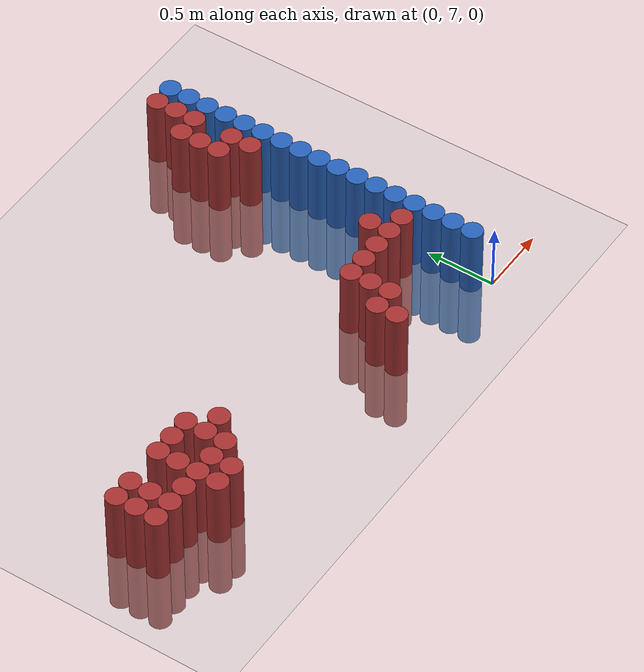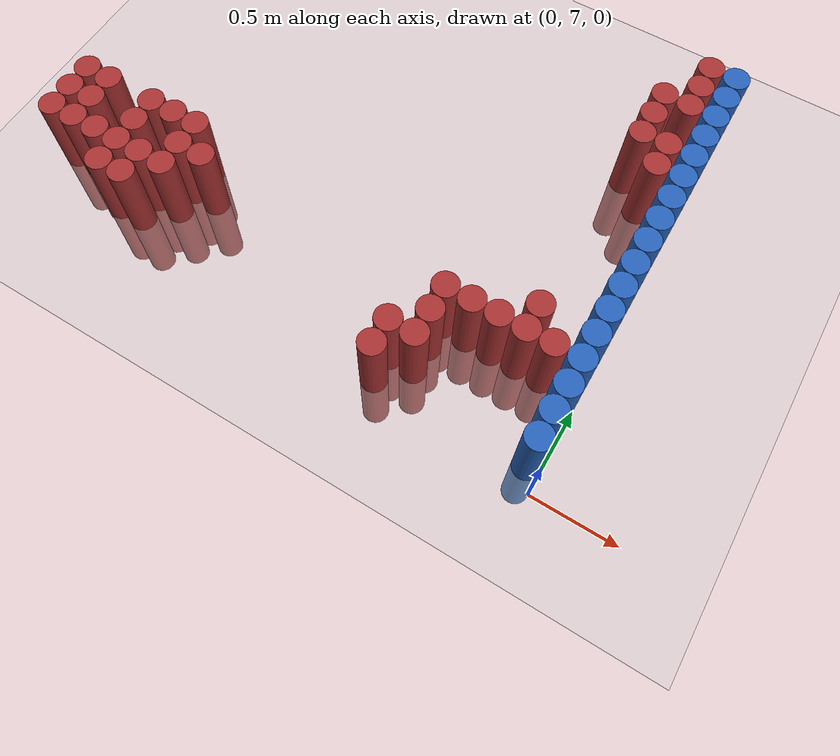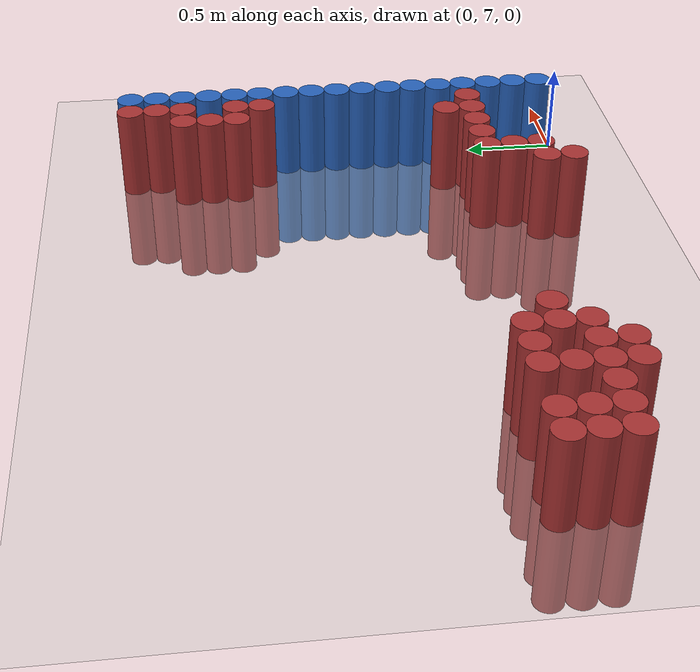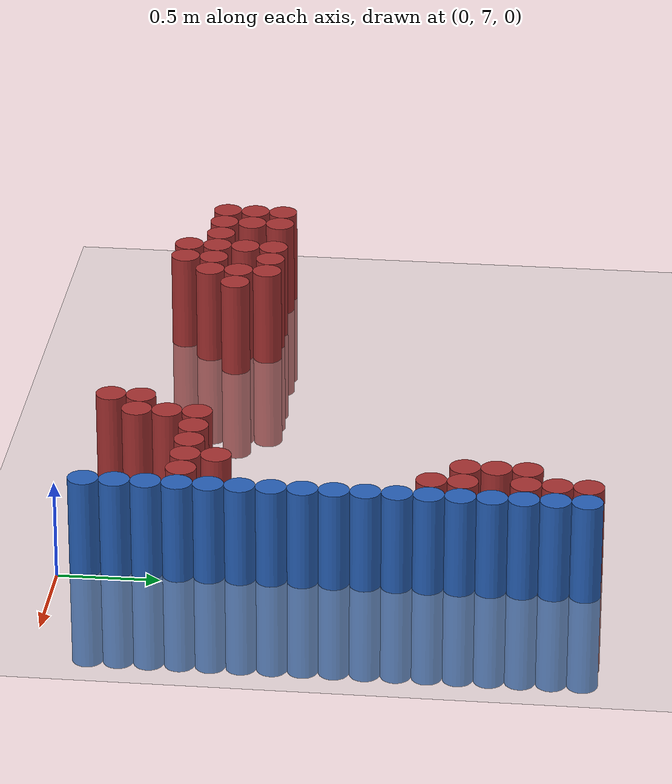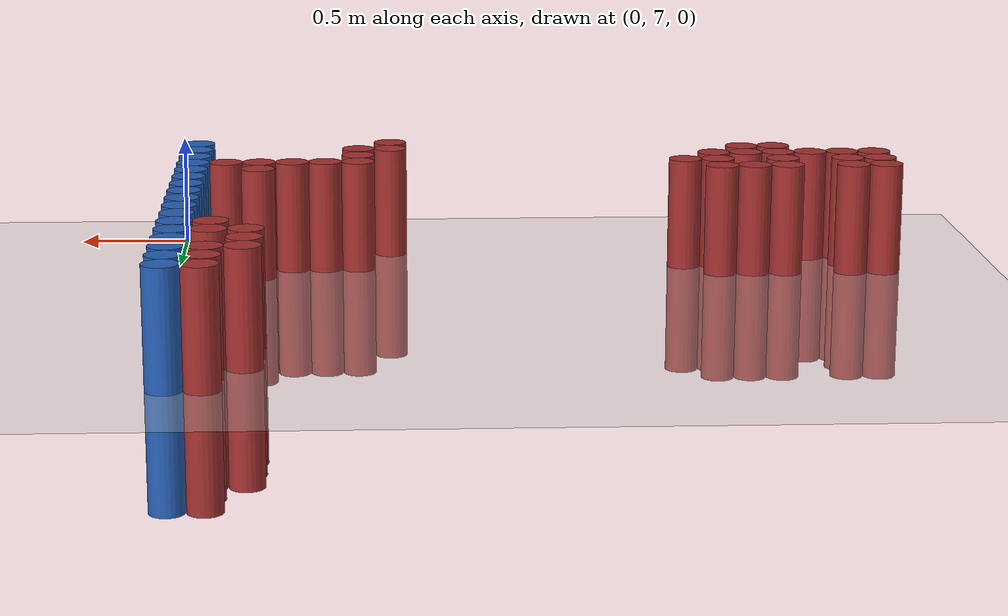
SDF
<sdf version="1.6">
 <world name="default">
  <model name="ground_plane">
   <static>1</static>
   <link name="link">
    <collision name="collision">
     <geometry><plane><normal>0 0 1</normal><size>100 100</size></plane></geometry>
     <surface><friction><ode><mu>100</mu><mu2>50</mu2></ode></friction></surface>
    </collision>
    <visual name="visual">
     <cast_shadows>0</cast_shadows>
     <geometry><plane><normal>0 0 1</normal><size>100 100</size></plane></geometry>
     <material>
      <script><uri>file://media/materials/scripts/gazebo.material</uri><name>Gazebo/Grey</name></script>
     </material>
    </visual>
   </link>
  </model>
  <model name="unit_cylinder_174">
   <static>1</static>
   <pose>-3.225000 7.425000 0.000000 0.000000 0.000000 0.000000</pose>
   <link name="link">
    <inertial>
     <mass>1</mass>
     <inertia><ixx>0.145833</ixx><ixy>0</ixy><ixz>0</ixz><iyy>0.145833</iyy><iyz>0</iyz><izz>0.125</izz></inertia>
    </inertial>
    <collision name="collision">
     <geometry><cylinder><radius>0.075000</radius><length>1</length></cylinder></geometry>
    </collision>
    <visual name="visual">
     <geometry><cylinder><radius>0.075000</radius><length>1</length></cylinder></geometry>
     <material>
      <ambient>0.648000 0.192000 0.192000 1</ambient>
      <diffuse>0.648000 0.192000 0.192000 1</diffuse>
     </material>
     <material>
      <script><name>Gazebo/Grey</name><uri>file://media/materials/scripts/gazebo.material</uri></script>
     </material>
    </visual>
   </link>
  </model>
  <model name="unit_cylinder_175">
   <static>1</static>
   <pose>-3.225000 7.575000 0.000000 0.000000 0.000000 0.000000</pose>
   <link name="link">
    <inertial>
     <mass>1</mass>
     <inertia><ixx>0.145833</ixx><ixy>0</ixy><ixz>0</ixz><iyy>0.145833</iyy><iyz>0</iyz><izz>0.125</izz></inertia>
    </inertial>
    <collision name="collision">
     <geometry><cylinder><radius>0.075000</radius><length>1</length></cylinder></geometry>
    </collision>
    <visual name="visual">
     <geometry><cylinder><radius>0.075000</radius><length>1</length></cylinder></geometry>
     <material>
      <ambient>0.648000 0.192000 0.192000 1</ambient>
      <diffuse>0.648000 0.192000 0.192000 1</diffuse>
     </material>
     <material>
      <script><name>Gazebo/Grey</name><uri>file://media/materials/scripts/gazebo.material</uri></script>
     </material>
    </visual>
   </link>
  </model>
  <model name="unit_cylinder_176">
   <static>1</static>
   <pose>-3.225000 7.725000 0.000000 0.000000 0.000000 0.000000</pose>
   <link name="link">
    <inertial>
     <mass>1</mass>
     <inertia><ixx>0.145833</ixx><ixy>0</ixy><ixz>0</ixz><iyy>0.145833</iyy><iyz>0</iyz><izz>0.125</izz></inertia>
    </inertial>
    <collision name="collision">
     <geometry><cylinder><radius>0.075000</radius><length>1</length></cylinder></geometry>
    </collision>
    <visual name="visual">
     <geometry><cylinder><radius>0.075000</radius><length>1</length></cylinder></geometry>
     <material>
      <ambient>0.648000 0.192000 0.192000 1</ambient>
      <diffuse>0.648000 0.192000 0.192000 1</diffuse>
     </material>
     <material>
      <script><name>Gazebo/Grey</name><uri>file://media/materials/scripts/gazebo.material</uri></script>
     </material>
    </visual>
   </link>
  </model>
  <model name="unit_cylinder_186">
   <static>1</static>
   <pose>-3.075000 7.425000 0.000000 0.000000 0.000000 0.000000</pose>
   <link name="link">
    <inertial>
     <mass>1</mass>
     <inertia><ixx>0.145833</ixx><ixy>0</ixy><ixz>0</ixz><iyy>0.145833</iyy><iyz>0</iyz><izz>0.125</izz></inertia>
    </inertial>
    <collision name="collision">
     <geometry><cylinder><radius>0.075000</radius><length>1</length></cylinder></geometry>
    </collision>
    <visual name="visual">
     <geometry><cylinder><radius>0.075000</radius><length>1</length></cylinder></geometry>
     <material>
      <ambient>0.648000 0.192000 0.192000 1</ambient>
      <diffuse>0.648000 0.192000 0.192000 1</diffuse>
     </material>
     <material>
      <script><name>Gazebo/Grey</name><uri>file://media/materials/scripts/gazebo.material</uri></script>
     </material>
    </visual>
   </link>
  </model>
  <model name="unit_cylinder_187">
   <static>1</static>
   <pose>-3.075000 7.575000 0.000000 0.000000 0.000000 0.000000</pose>
   <link name="link">
    <inertial>
     <mass>1</mass>
     <inertia><ixx>0.145833</ixx><ixy>0</ixy><ixz>0</ixz><iyy>0.145833</iyy><iyz>0</iyz><izz>0.125</izz></inertia>
    </inertial>
    <collision name="collision">
     <geometry><cylinder><radius>0.075000</radius><length>1</length></cylinder></geometry>
    </collision>
    <visual name="visual">
     <geometry><cylinder><radius>0.075000</radius><length>1</length></cylinder></geometry>
     <material>
      <ambient>0.648000 0.192000 0.192000 1</ambient>
      <diffuse>0.648000 0.192000 0.192000 1</diffuse>
     </material>
     <material>
      <script><name>Gazebo/Grey</name><uri>file://media/materials/scripts/gazebo.material</uri></script>
     </material>
    </visual>
   </link>
  </model>
  <model name="unit_cylinder_188">
   <static>1</static>
   <pose>-3.075000 7.725000 0.000000 0.000000 0.000000 0.000000</pose>
   <link name="link">
    <inertial>
     <mass>1</mass>
     <inertia><ixx>0.145833</ixx><ixy>0</ixy><ixz>0</ixz><iyy>0.145833</iyy><iyz>0</iyz><izz>0.125</izz></inertia>
    </inertial>
    <collision name="collision">
     <geometry><cylinder><radius>0.075000</radius><length>1</length></cylinder></geometry>
    </collision>
    <visual name="visual">
     <geometry><cylinder><radius>0.075000</radius><length>1</length></cylinder></geometry>
     <material>
      <ambient>0.648000 0.192000 0.192000 1</ambient>
      <diffuse>0.648000 0.192000 0.192000 1</diffuse>
     </material>
     <material>
      <script><name>Gazebo/Grey</name><uri>file://media/materials/scripts/gazebo.material</uri></script>
     </material>
    </visual>
   </link>
  </model>
  <model name="unit_cylinder_196">
   <static>1</static>
   <pose>-2.925000 7.425000 0.000000 0.000000 0.000000 0.000000</pose>
   <link name="link">
    <inertial>
     <mass>1</mass>
     <inertia><ixx>0.145833</ixx><ixy>0</ixy><ixz>0</ixz><iyy>0.145833</iyy><iyz>0</iyz><izz>0.125</izz></inertia>
    </inertial>
    <collision name="collision">
     <geometry><cylinder><radius>0.075000</radius><length>1</length></cylinder></geometry>
    </collision>
    <visual name="visual">
     <geometry><cylinder><radius>0.075000</radius><length>1</length></cylinder></geometry>
     <material>
      <ambient>0.648000 0.192000 0.192000 1</ambient>
      <diffuse>0.648000 0.192000 0.192000 1</diffuse>
     </material>
     <material>
      <script><name>Gazebo/Grey</name><uri>file://media/materials/scripts/gazebo.material</uri></script>
     </material>
    </visual>
   </link>
  </model>
  <model name="unit_cylinder_206">
   <static>1</static>
   <pose>-2.775000 7.275000 0.000000 0.000000 0.000000 0.000000</pose>
   <link name="link">
    <inertial>
     <mass>1</mass>
     <inertia><ixx>0.145833</ixx><ixy>0</ixy><ixz>0</ixz><iyy>0.145833</iyy><iyz>0</iyz><izz>0.125</izz></inertia>
    </inertial>
    <collision name="collision">
     <geometry><cylinder><radius>0.075000</radius><length>1</length></cylinder></geometry>
    </collision>
    <visual name="visual">
     <geometry><cylinder><radius>0.075000</radius><length>1</length></cylinder></geometry>
     <material>
      <ambient>0.648000 0.192000 0.192000 1</ambient>
      <diffuse>0.648000 0.192000 0.192000 1</diffuse>
     </material>
     <material>
      <script><name>Gazebo/Grey</name><uri>file://media/materials/scripts/gazebo.material</uri></script>
     </material>
    </visual>
   </link>
  </model>
  <model name="unit_cylinder_207">
   <static>1</static>
   <pose>-2.775000 7.425000 0.000000 0.000000 0.000000 0.000000</pose>
   <link name="link">
    <inertial>
     <mass>1</mass>
     <inertia><ixx>0.145833</ixx><ixy>0</ixy><ixz>0</ixz><iyy>0.145833</iyy><iyz>0</iyz><izz>0.125</izz></inertia>
    </inertial>
    <collision name="collision">
     <geometry><cylinder><radius>0.075000</radius><length>1</length></cylinder></geometry>
    </collision>
    <visual name="visual">
     <geometry><cylinder><radius>0.075000</radius><length>1</length></cylinder></geometry>
     <material>
      <ambient>0.648000 0.192000 0.192000 1</ambient>
      <diffuse>0.648000 0.192000 0.192000 1</diffuse>
     </material>
     <material>
      <script><name>Gazebo/Grey</name><uri>file://media/materials/scripts/gazebo.material</uri></script>
     </material>
    </visual>
   </link>
  </model>
  <model name="unit_cylinder_208">
   <static>1</static>
   <pose>-2.775000 7.575000 0.000000 0.000000 0.000000 0.000000</pose>
   <link name="link">
    <inertial>
     <mass>1</mass>
     <inertia><ixx>0.145833</ixx><ixy>0</ixy><ixz>0</ixz><iyy>0.145833</iyy><iyz>0</iyz><izz>0.125</izz></inertia>
    </inertial>
    <collision name="collision">
     <geometry><cylinder><radius>0.075000</radius><length>1</length></cylinder></geometry>
    </collision>
    <visual name="visual">
     <geometry><cylinder><radius>0.075000</radius><length>1</length></cylinder></geometry>
     <material>
      <ambient>0.648000 0.192000 0.192000 1</ambient>
      <diffuse>0.648000 0.192000 0.192000 1</diffuse>
     </material>
     <material>
      <script><name>Gazebo/Grey</name><uri>file://media/materials/scripts/gazebo.material</uri></script>
     </material>
    </visual>
   </link>
  </model>
  <model name="unit_cylinder_209">
   <static>1</static>
   <pose>-2.775000 7.725000 0.000000 0.000000 0.000000 0.000000</pose>
   <link name="link">
    <inertial>
     <mass>1</mass>
     <inertia><ixx>0.145833</ixx><ixy>0</ixy><ixz>0</ixz><iyy>0.145833</iyy><iyz>0</iyz><izz>0.125</izz></inertia>
    </inertial>
    <collision name="collision">
     <geometry><cylinder><radius>0.075000</radius><length>1</length></cylinder></geometry>
    </collision>
    <visual name="visual">
     <geometry><cylinder><radius>0.075000</radius><length>1</length></cylinder></geometry>
     <material>
      <ambient>0.648000 0.192000 0.192000 1</ambient>
      <diffuse>0.648000 0.192000 0.192000 1</diffuse>
     </material>
     <material>
      <script><name>Gazebo/Grey</name><uri>file://media/materials/scripts/gazebo.material</uri></script>
     </material>
    </visual>
   </link>
  </model>
  <model name="unit_cylinder_213">
   <static>1</static>
   <pose>-2.625000 7.275000 0.000000 0.000000 0.000000 0.000000</pose>
   <link name="link">
    <inertial>
     <mass>1</mass>
     <inertia><ixx>0.145833</ixx><ixy>0</ixy><ixz>0</ixz><iyy>0.145833</iyy><iyz>0</iyz><izz>0.125</izz></inertia>
    </inertial>
    <collision name="collision">
     <geometry><cylinder><radius>0.075000</radius><length>1</length></cylinder></geometry>
    </collision>
    <visual name="visual">
     <geometry><cylinder><radius>0.075000</radius><length>1</length></cylinder></geometry>
     <material>
      <ambient>0.648000 0.192000 0.192000 1</ambient>
      <diffuse>0.648000 0.192000 0.192000 1</diffuse>
     </material>
     <material>
      <script><name>Gazebo/Grey</name><uri>file://media/materials/scripts/gazebo.material</uri></script>
     </material>
    </visual>
   </link>
  </model>
  <model name="unit_cylinder_214">
   <static>1</static>
   <pose>-2.625000 7.425000 0.000000 0.000000 0.000000 0.000000</pose>
   <link name="link">
    <inertial>
     <mass>1</mass>
     <inertia><ixx>0.145833</ixx><ixy>0</ixy><ixz>0</ixz><iyy>0.145833</iyy><iyz>0</iyz><izz>0.125</izz></inertia>
    </inertial>
    <collision name="collision">
     <geometry><cylinder><radius>0.075000</radius><length>1</length></cylinder></geometry>
    </collision>
    <visual name="visual">
     <geometry><cylinder><radius>0.075000</radius><length>1</length></cylinder></geometry>
     <material>
      <ambient>0.648000 0.192000 0.192000 1</ambient>
      <diffuse>0.648000 0.192000 0.192000 1</diffuse>
     </material>
     <material>
      <script><name>Gazebo/Grey</name><uri>file://media/materials/scripts/gazebo.material</uri></script>
     </material>
    </visual>
   </link>
  </model>
  <model name="unit_cylinder_215">
   <static>1</static>
   <pose>-2.625000 7.725000 0.000000 0.000000 0.000000 0.000000</pose>
   <link name="link">
    <inertial>
     <mass>1</mass>
     <inertia><ixx>0.145833</ixx><ixy>0</ixy><ixz>0</ixz><iyy>0.145833</iyy><iyz>0</iyz><izz>0.125</izz></inertia>
    </inertial>
    <collision name="collision">
     <geometry><cylinder><radius>0.075000</radius><length>1</length></cylinder></geometry>
    </collision>
    <visual name="visual">
     <geometry><cylinder><radius>0.075000</radius><length>1</length></cylinder></geometry>
     <material>
      <ambient>0.648000 0.192000 0.192000 1</ambient>
      <diffuse>0.648000 0.192000 0.192000 1</diffuse>
     </material>
     <material>
      <script><name>Gazebo/Grey</name><uri>file://media/materials/scripts/gazebo.material</uri></script>
     </material>
    </visual>
   </link>
  </model>
  <model name="unit_cylinder_223">
   <static>1</static>
   <pose>-2.475000 7.425000 0.000000 0.000000 0.000000 0.000000</pose>
   <link name="link">
    <inertial>
     <mass>1</mass>
     <inertia><ixx>0.145833</ixx><ixy>0</ixy><ixz>0</ixz><iyy>0.145833</iyy><iyz>0</iyz><izz>0.125</izz></inertia>
    </inertial>
    <collision name="collision">
     <geometry><cylinder><radius>0.075000</radius><length>1</length></cylinder></geometry>
    </collision>
    <visual name="visual">
     <geometry><cylinder><radius>0.075000</radius><length>1</length></cylinder></geometry>
     <material>
      <ambient>0.648000 0.192000 0.192000 1</ambient>
      <diffuse>0.648000 0.192000 0.192000 1</diffuse>
     </material>
     <material>
      <script><name>Gazebo/Grey</name><uri>file://media/materials/scripts/gazebo.material</uri></script>
     </material>
    </visual>
   </link>
  </model>
  <model name="unit_cylinder_224">
   <static>1</static>
   <pose>-2.475000 7.575000 0.000000 0.000000 0.000000 0.000000</pose>
   <link name="link">
    <inertial>
     <mass>1</mass>
     <inertia><ixx>0.145833</ixx><ixy>0</ixy><ixz>0</ixz><iyy>0.145833</iyy><iyz>0</iyz><izz>0.125</izz></inertia>
    </inertial>
    <collision name="collision">
     <geometry><cylinder><radius>0.075000</radius><length>1</length></cylinder></geometry>
    </collision>
    <visual name="visual">
     <geometry><cylinder><radius>0.075000</radius><length>1</length></cylinder></geometry>
     <material>
      <ambient>0.648000 0.192000 0.192000 1</ambient>
      <diffuse>0.648000 0.192000 0.192000 1</diffuse>
     </material>
     <material>
      <script><name>Gazebo/Grey</name><uri>file://media/materials/scripts/gazebo.material</uri></script>
     </material>
    </visual>
   </link>
  </model>
  <model name="unit_cylinder_225">
   <static>1</static>
   <pose>-2.475000 7.725000 0.000000 0.000000 0.000000 0.000000</pose>
   <link name="link">
    <inertial>
     <mass>1</mass>
     <inertia><ixx>0.145833</ixx><ixy>0</ixy><ixz>0</ixz><iyy>0.145833</iyy><iyz>0</iyz><izz>0.125</izz></inertia>
    </inertial>
    <collision name="collision">
     <geometry><cylinder><radius>0.075000</radius><length>1</length></cylinder></geometry>
    </collision>
    <visual name="visual">
     <geometry><cylinder><radius>0.075000</radius><length>1</length></cylinder></geometry>
     <material>
      <ambient>0.648000 0.192000 0.192000 1</ambient>
      <diffuse>0.648000 0.192000 0.192000 1</diffuse>
     </material>
     <material>
      <script><name>Gazebo/Grey</name><uri>file://media/materials/scripts/gazebo.material</uri></script>
     </material>
    </visual>
   </link>
  </model>
  <model name="unit_cylinder_229">
   <static>1</static>
   <pose>-2.325000 7.575000 0.000000 0.000000 0.000000 0.000000</pose>
   <link name="link">
    <inertial>
     <mass>1</mass>
     <inertia><ixx>0.145833</ixx><ixy>0</ixy><ixz>0</ixz><iyy>0.145833</iyy><iyz>0</iyz><izz>0.125</izz></inertia>
    </inertial>
    <collision name="collision">
     <geometry><cylinder><radius>0.075000</radius><length>1</length></cylinder></geometry>
    </collision>
    <visual name="visual">
     <geometry><cylinder><radius>0.075000</radius><length>1</length></cylinder></geometry>
     <material>
      <ambient>0.648000 0.192000 0.192000 1</ambient>
      <diffuse>0.648000 0.192000 0.192000 1</diffuse>
     </material>
     <material>
      <script><name>Gazebo/Grey</name><uri>file://media/materials/scripts/gazebo.material</uri></script>
     </material>
    </visual>
   </link>
  </model>
  <model name="unit_cylinder_259">
   <static>1</static>
   <pose>-0.975000 7.125000 0.000000 0.000000 0.000000 0.000000</pose>
   <link name="link">
    <inertial>
     <mass>1</mass>
     <inertia><ixx>0.145833</ixx><ixy>0</ixy><ixz>0</ixz><iyy>0.145833</iyy><iyz>0</iyz><izz>0.125</izz></inertia>
    </inertial>
    <collision name="collision">
     <geometry><cylinder><radius>0.075000</radius><length>1</length></cylinder></geometry>
    </collision>
    <visual name="visual">
     <geometry><cylinder><radius>0.075000</radius><length>1</length></cylinder></geometry>
     <material>
      <ambient>0.648000 0.192000 0.192000 1</ambient>
      <diffuse>0.648000 0.192000 0.192000 1</diffuse>
     </material>
     <material>
      <script><name>Gazebo/Grey</name><uri>file://media/materials/scripts/gazebo.material</uri></script>
     </material>
    </visual>
   </link>
  </model>
  <model name="unit_cylinder_260">
   <static>1</static>
   <pose>-0.975000 7.275000 0.000000 0.000000 0.000000 0.000000</pose>
   <link name="link">
    <inertial>
     <mass>1</mass>
     <inertia><ixx>0.145833</ixx><ixy>0</ixy><ixz>0</ixz><iyy>0.145833</iyy><iyz>0</iyz><izz>0.125</izz></inertia>
    </inertial>
    <collision name="collision">
     <geometry><cylinder><radius>0.075000</radius><length>1</length></cylinder></geometry>
    </collision>
    <visual name="visual">
     <geometry><cylinder><radius>0.075000</radius><length>1</length></cylinder></geometry>
     <material>
      <ambient>0.648000 0.192000 0.192000 1</ambient>
      <diffuse>0.648000 0.192000 0.192000 1</diffuse>
     </material>
     <material>
      <script><name>Gazebo/Grey</name><uri>file://media/materials/scripts/gazebo.material</uri></script>
     </material>
    </visual>
   </link>
  </model>
  <model name="unit_cylinder_265">
   <static>1</static>
   <pose>-0.825000 7.275000 0.000000 0.000000 0.000000 0.000000</pose>
   <link name="link">
    <inertial>
     <mass>1</mass>
     <inertia><ixx>0.145833</ixx><ixy>0</ixy><ixz>0</ixz><iyy>0.145833</iyy><iyz>0</iyz><izz>0.125</izz></inertia>
    </inertial>
    <collision name="collision">
     <geometry><cylinder><radius>0.075000</radius><length>1</length></cylinder></geometry>
    </collision>
    <visual name="visual">
     <geometry><cylinder><radius>0.075000</radius><length>1</length></cylinder></geometry>
     <material>
      <ambient>0.648000 0.192000 0.192000 1</ambient>
      <diffuse>0.648000 0.192000 0.192000 1</diffuse>
     </material>
     <material>
      <script><name>Gazebo/Grey</name><uri>file://media/materials/scripts/gazebo.material</uri></script>
     </material>
    </visual>
   </link>
  </model>
  <model name="unit_cylinder_266">
   <static>1</static>
   <pose>-0.825000 7.425000 0.000000 0.000000 0.000000 0.000000</pose>
   <link name="link">
    <inertial>
     <mass>1</mass>
     <inertia><ixx>0.145833</ixx><ixy>0</ixy><ixz>0</ixz><iyy>0.145833</iyy><iyz>0</iyz><izz>0.125</izz></inertia>
    </inertial>
    <collision name="collision">
     <geometry><cylinder><radius>0.075000</radius><length>1</length></cylinder></geometry>
    </collision>
    <visual name="visual">
     <geometry><cylinder><radius>0.075000</radius><length>1</length></cylinder></geometry>
     <material>
      <ambient>0.648000 0.192000 0.192000 1</ambient>
      <diffuse>0.648000 0.192000 0.192000 1</diffuse>
     </material>
     <material>
      <script><name>Gazebo/Grey</name><uri>file://media/materials/scripts/gazebo.material</uri></script>
     </material>
    </visual>
   </link>
  </model>
  <model name="unit_cylinder_267">
   <static>1</static>
   <pose>-0.825000 7.575000 0.000000 0.000000 0.000000 0.000000</pose>
   <link name="link">
    <inertial>
     <mass>1</mass>
     <inertia><ixx>0.145833</ixx><ixy>0</ixy><ixz>0</ixz><iyy>0.145833</iyy><iyz>0</iyz><izz>0.125</izz></inertia>
    </inertial>
    <collision name="collision">
     <geometry><cylinder><radius>0.075000</radius><length>1</length></cylinder></geometry>
    </collision>
    <visual name="visual">
     <geometry><cylinder><radius>0.075000</radius><length>1</length></cylinder></geometry>
     <material>
      <ambient>0.648000 0.192000 0.192000 1</ambient>
      <diffuse>0.648000 0.192000 0.192000 1</diffuse>
     </material>
     <material>
      <script><name>Gazebo/Grey</name><uri>file://media/materials/scripts/gazebo.material</uri></script>
     </material>
    </visual>
   </link>
  </model>
  <model name="unit_cylinder_269">
   <static>1</static>
   <pose>-0.675000 7.575000 0.000000 0.000000 0.000000 0.000000</pose>
   <link name="link">
    <inertial>
     <mass>1</mass>
     <inertia><ixx>0.145833</ixx><ixy>0</ixy><ixz>0</ixz><iyy>0.145833</iyy><iyz>0</iyz><izz>0.125</izz></inertia>
    </inertial>
    <collision name="collision">
     <geometry><cylinder><radius>0.075000</radius><length>1</length></cylinder></geometry>
    </collision>
    <visual name="visual">
     <geometry><cylinder><radius>0.075000</radius><length>1</length></cylinder></geometry>
     <material>
      <ambient>0.648000 0.192000 0.192000 1</ambient>
      <diffuse>0.648000 0.192000 0.192000 1</diffuse>
     </material>
     <material>
      <script><name>Gazebo/Grey</name><uri>file://media/materials/scripts/gazebo.material</uri></script>
     </material>
    </visual>
   </link>
  </model>
  <model name="unit_cylinder_271">
   <static>1</static>
   <pose>-0.525000 7.575000 0.000000 0.000000 0.000000 0.000000</pose>
   <link name="link">
    <inertial>
     <mass>1</mass>
     <inertia><ixx>0.145833</ixx><ixy>0</ixy><ixz>0</ixz><iyy>0.145833</iyy><iyz>0</iyz><izz>0.125</izz></inertia>
    </inertial>
    <collision name="collision">
     <geometry><cylinder><radius>0.075000</radius><length>1</length></cylinder></geometry>
    </collision>
    <visual name="visual">
     <geometry><cylinder><radius>0.075000</radius><length>1</length></cylinder></geometry>
     <material>
      <ambient>0.648000 0.192000 0.192000 1</ambient>
      <diffuse>0.648000 0.192000 0.192000 1</diffuse>
     </material>
     <material>
      <script><name>Gazebo/Grey</name><uri>file://media/materials/scripts/gazebo.material</uri></script>
     </material>
    </visual>
   </link>
  </model>
  <model name="unit_cylinder_273">
   <static>1</static>
   <pose>-0.375000 7.575000 0.000000 0.000000 0.000000 0.000000</pose>
   <link name="link">
    <inertial>
     <mass>1</mass>
     <inertia><ixx>0.145833</ixx><ixy>0</ixy><ixz>0</ixz><iyy>0.145833</iyy><iyz>0</iyz><izz>0.125</izz></inertia>
    </inertial>
    <collision name="collision">
     <geometry><cylinder><radius>0.075000</radius><length>1</length></cylinder></geometry>
    </collision>
    <visual name="visual">
     <geometry><cylinder><radius>0.075000</radius><length>1</length></cylinder></geometry>
     <material>
      <ambient>0.648000 0.192000 0.192000 1</ambient>
      <diffuse>0.648000 0.192000 0.192000 1</diffuse>
     </material>
     <material>
      <script><name>Gazebo/Grey</name><uri>file://media/materials/scripts/gazebo.material</uri></script>
     </material>
    </visual>
   </link>
  </model>
  <model name="unit_cylinder_274">
   <static>1</static>
   <pose>-0.375000 7.725000 0.000000 0.000000 0.000000 0.000000</pose>
   <link name="link">
    <inertial>
     <mass>1</mass>
     <inertia><ixx>0.145833</ixx><ixy>0</ixy><ixz>0</ixz><iyy>0.145833</iyy><iyz>0</iyz><izz>0.125</izz></inertia>
    </inertial>
    <collision name="collision">
     <geometry><cylinder><radius>0.075000</radius><length>1</length></cylinder></geometry>
    </collision>
    <visual name="visual">
     <geometry><cylinder><radius>0.075000</radius><length>1</length></cylinder></geometry>
     <material>
      <ambient>0.648000 0.192000 0.192000 1</ambient>
      <diffuse>0.648000 0.192000 0.192000 1</diffuse>
     </material>
     <material>
      <script><name>Gazebo/Grey</name><uri>file://media/materials/scripts/gazebo.material</uri></script>
     </material>
    </visual>
   </link>
  </model>
  <model name="unit_cylinder_275">
   <static>1</static>
   <pose>-0.375000 8.925000 0.000000 0.000000 0.000000 0.000000</pose>
   <link name="link">
    <inertial>
     <mass>1</mass>
     <inertia><ixx>0.145833</ixx><ixy>0</ixy><ixz>0</ixz><iyy>0.145833</iyy><iyz>0</iyz><izz>0.125</izz></inertia>
    </inertial>
    <collision name="collision">
     <geometry><cylinder><radius>0.075000</radius><length>1</length></cylinder></geometry>
    </collision>
    <visual name="visual">
     <geometry><cylinder><radius>0.075000</radius><length>1</length></cylinder></geometry>
     <material>
      <ambient>0.648000 0.192000 0.192000 1</ambient>
      <diffuse>0.648000 0.192000 0.192000 1</diffuse>
     </material>
     <material>
      <script><name>Gazebo/Grey</name><uri>file://media/materials/scripts/gazebo.material</uri></script>
     </material>
    </visual>
   </link>
  </model>
  <model name="unit_cylinder_276">
   <static>1</static>
   <pose>-0.375000 9.075000 0.000000 0.000000 0.000000 0.000000</pose>
   <link name="link">
    <inertial>
     <mass>1</mass>
     <inertia><ixx>0.145833</ixx><ixy>0</ixy><ixz>0</ixz><iyy>0.145833</iyy><iyz>0</iyz><izz>0.125</izz></inertia>
    </inertial>
    <collision name="collision">
     <geometry><cylinder><radius>0.075000</radius><length>1</length></cylinder></geometry>
    </collision>
    <visual name="visual">
     <geometry><cylinder><radius>0.075000</radius><length>1</length></cylinder></geometry>
     <material>
      <ambient>0.648000 0.192000 0.192000 1</ambient>
      <diffuse>0.648000 0.192000 0.192000 1</diffuse>
     </material>
     <material>
      <script><name>Gazebo/Grey</name><uri>file://media/materials/scripts/gazebo.material</uri></script>
     </material>
    </visual>
   </link>
  </model>
  <model name="unit_cylinder_277">
   <static>1</static>
   <pose>-0.375000 9.225000 0.000000 0.000000 0.000000 0.000000</pose>
   <link name="link">
    <inertial>
     <mass>1</mass>
     <inertia><ixx>0.145833</ixx><ixy>0</ixy><ixz>0</ixz><iyy>0.145833</iyy><iyz>0</iyz><izz>0.125</izz></inertia>
    </inertial>
    <collision name="collision">
     <geometry><cylinder><radius>0.075000</radius><length>1</length></cylinder></geometry>
    </collision>
    <visual name="visual">
     <geometry><cylinder><radius>0.075000</radius><length>1</length></cylinder></geometry>
     <material>
      <ambient>0.648000 0.192000 0.192000 1</ambient>
      <diffuse>0.648000 0.192000 0.192000 1</diffuse>
     </material>
     <material>
      <script><name>Gazebo/Grey</name><uri>file://media/materials/scripts/gazebo.material</uri></script>
     </material>
    </visual>
   </link>
  </model>
  <model name="unit_cylinder_279">
   <static>1</static>
   <pose>-0.225000 7.575000 0.000000 0.000000 0.000000 0.000000</pose>
   <link name="link">
    <inertial>
     <mass>1</mass>
     <inertia><ixx>0.145833</ixx><ixy>0</ixy><ixz>0</ixz><iyy>0.145833</iyy><iyz>0</iyz><izz>0.125</izz></inertia>
    </inertial>
    <collision name="collision">
     <geometry><cylinder><radius>0.075000</radius><length>1</length></cylinder></geometry>
    </collision>
    <visual name="visual">
     <geometry><cylinder><radius>0.075000</radius><length>1</length></cylinder></geometry>
     <material>
      <ambient>0.648000 0.192000 0.192000 1</ambient>
      <diffuse>0.648000 0.192000 0.192000 1</diffuse>
     </material>
     <material>
      <script><name>Gazebo/Grey</name><uri>file://media/materials/scripts/gazebo.material</uri></script>
     </material>
    </visual>
   </link>
  </model>
  <model name="unit_cylinder_280">
   <static>1</static>
   <pose>-0.225000 8.775000 0.000000 0.000000 0.000000 0.000000</pose>
   <link name="link">
    <inertial>
     <mass>1</mass>
     <inertia><ixx>0.145833</ixx><ixy>0</ixy><ixz>0</ixz><iyy>0.145833</iyy><iyz>0</iyz><izz>0.125</izz></inertia>
    </inertial>
    <collision name="collision">
     <geometry><cylinder><radius>0.075000</radius><length>1</length></cylinder></geometry>
    </collision>
    <visual name="visual">
     <geometry><cylinder><radius>0.075000</radius><length>1</length></cylinder></geometry>
     <material>
      <ambient>0.648000 0.192000 0.192000 1</ambient>
      <diffuse>0.648000 0.192000 0.192000 1</diffuse>
     </material>
     <material>
      <script><name>Gazebo/Grey</name><uri>file://media/materials/scripts/gazebo.material</uri></script>
     </material>
    </visual>
   </link>
  </model>
  <model name="unit_cylinder_281">
   <static>1</static>
   <pose>-0.225000 8.925000 0.000000 0.000000 0.000000 0.000000</pose>
   <link name="link">
    <inertial>
     <mass>1</mass>
     <inertia><ixx>0.145833</ixx><ixy>0</ixy><ixz>0</ixz><iyy>0.145833</iyy><iyz>0</iyz><izz>0.125</izz></inertia>
    </inertial>
    <collision name="collision">
     <geometry><cylinder><radius>0.075000</radius><length>1</length></cylinder></geometry>
    </collision>
    <visual name="visual">
     <geometry><cylinder><radius>0.075000</radius><length>1</length></cylinder></geometry>
     <material>
      <ambient>0.648000 0.192000 0.192000 1</ambient>
      <diffuse>0.648000 0.192000 0.192000 1</diffuse>
     </material>
     <material>
      <script><name>Gazebo/Grey</name><uri>file://media/materials/scripts/gazebo.material</uri></script>
     </material>
    </visual>
   </link>
  </model>
  <model name="unit_cylinder_282">
   <static>1</static>
   <pose>-0.225000 9.225000 0.000000 0.000000 0.000000 0.000000</pose>
   <link name="link">
    <inertial>
     <mass>1</mass>
     <inertia><ixx>0.145833</ixx><ixy>0</ixy><ixz>0</ixz><iyy>0.145833</iyy><iyz>0</iyz><izz>0.125</izz></inertia>
    </inertial>
    <collision name="collision">
     <geometry><cylinder><radius>0.075000</radius><length>1</length></cylinder></geometry>
    </collision>
    <visual name="visual">
     <geometry><cylinder><radius>0.075000</radius><length>1</length></cylinder></geometry>
     <material>
      <ambient>0.648000 0.192000 0.192000 1</ambient>
      <diffuse>0.648000 0.192000 0.192000 1</diffuse>
     </material>
     <material>
      <script><name>Gazebo/Grey</name><uri>file://media/materials/scripts/gazebo.material</uri></script>
     </material>
    </visual>
   </link>
  </model>
  <model name="unit_cylinder_283">
   <static>1</static>
   <pose>-0.225000 9.375000 0.000000 0.000000 0.000000 0.000000</pose>
   <link name="link">
    <inertial>
     <mass>1</mass>
     <inertia><ixx>0.145833</ixx><ixy>0</ixy><ixz>0</ixz><iyy>0.145833</iyy><iyz>0</iyz><izz>0.125</izz></inertia>
    </inertial>
    <collision name="collision">
     <geometry><cylinder><radius>0.075000</radius><length>1</length></cylinder></geometry>
    </collision>
    <visual name="visual">
     <geometry><cylinder><radius>0.075000</radius><length>1</length></cylinder></geometry>
     <material>
      <ambient>0.648000 0.192000 0.192000 1</ambient>
      <diffuse>0.648000 0.192000 0.192000 1</diffuse>
     </material>
     <material>
      <script><name>Gazebo/Grey</name><uri>file://media/materials/scripts/gazebo.material</uri></script>
     </material>
    </visual>
   </link>
  </model>
  <model name="unit_cylinder_284">
   <static>1</static>
   <pose>-0.225000 9.525000 0.000000 0.000000 0.000000 0.000000</pose>
   <link name="link">
    <inertial>
     <mass>1</mass>
     <inertia><ixx>0.145833</ixx><ixy>0</ixy><ixz>0</ixz><iyy>0.145833</iyy><iyz>0</iyz><izz>0.125</izz></inertia>
    </inertial>
    <collision name="collision">
     <geometry><cylinder><radius>0.075000</radius><length>1</length></cylinder></geometry>
    </collision>
    <visual name="visual">
     <geometry><cylinder><radius>0.075000</radius><length>1</length></cylinder></geometry>
     <material>
      <ambient>0.648000 0.192000 0.192000 1</ambient>
      <diffuse>0.648000 0.192000 0.192000 1</diffuse>
     </material>
     <material>
      <script><name>Gazebo/Grey</name><uri>file://media/materials/scripts/gazebo.material</uri></script>
     </material>
    </visual>
   </link>
  </model>
  <model name="unit_cylinder_298">
   <static>1</static>
   <pose>-0.075000 7.125000 0.000000 0.000000 0.000000 0.000000</pose>
   <link name="link">
    <inertial>
     <mass>1</mass>
     <inertia><ixx>0.145833</ixx><ixy>0</ixy><ixz>0</ixz><iyy>0.145833</iyy><iyz>0</iyz><izz>0.125</izz></inertia>
    </inertial>
    <collision name="collision">
     <geometry><cylinder><radius>0.075000</radius><length>1</length></cylinder></geometry>
    </collision>
    <visual name="visual">
     <geometry><cylinder><radius>0.075000</radius><length>1</length></cylinder></geometry>
     <material>
      <ambient>0.152000 0.379000 0.720000 1</ambient>
      <diffuse>0.152000 0.379000 0.720000 1</diffuse>
     </material>
     <material>
      <script><name>Gazebo/Grey</name><uri>file://media/materials/scripts/gazebo.material</uri></script>
     </material>
    </visual>
   </link>
  </model>
  <model name="unit_cylinder_299">
   <static>1</static>
   <pose>-0.075000 7.275000 0.000000 0.000000 0.000000 0.000000</pose>
   <link name="link">
    <inertial>
     <mass>1</mass>
     <inertia><ixx>0.145833</ixx><ixy>0</ixy><ixz>0</ixz><iyy>0.145833</iyy><iyz>0</iyz><izz>0.125</izz></inertia>
    </inertial>
    <collision name="collision">
     <geometry><cylinder><radius>0.075000</radius><length>1</length></cylinder></geometry>
    </collision>
    <visual name="visual">
     <geometry><cylinder><radius>0.075000</radius><length>1</length></cylinder></geometry>
     <material>
      <ambient>0.152000 0.379000 0.720000 1</ambient>
      <diffuse>0.152000 0.379000 0.720000 1</diffuse>
     </material>
     <material>
      <script><name>Gazebo/Grey</name><uri>file://media/materials/scripts/gazebo.material</uri></script>
     </material>
    </visual>
   </link>
  </model>
  <model name="unit_cylinder_300">
   <static>1</static>
   <pose>-0.075000 7.425000 0.000000 0.000000 0.000000 0.000000</pose>
   <link name="link">
    <inertial>
     <mass>1</mass>
     <inertia><ixx>0.145833</ixx><ixy>0</ixy><ixz>0</ixz><iyy>0.145833</iyy><iyz>0</iyz><izz>0.125</izz></inertia>
    </inertial>
    <collision name="collision">
     <geometry><cylinder><radius>0.075000</radius><length>1</length></cylinder></geometry>
    </collision>
    <visual name="visual">
     <geometry><cylinder><radius>0.075000</radius><length>1</length></cylinder></geometry>
     <material>
      <ambient>0.152000 0.379000 0.720000 1</ambient>
      <diffuse>0.152000 0.379000 0.720000 1</diffuse>
     </material>
     <material>
      <script><name>Gazebo/Grey</name><uri>file://media/materials/scripts/gazebo.material</uri></script>
     </material>
    </visual>
   </link>
  </model>
  <model name="unit_cylinder_301">
   <static>1</static>
   <pose>-0.075000 7.575000 0.000000 0.000000 0.000000 0.000000</pose>
   <link name="link">
    <inertial>
     <mass>1</mass>
     <inertia><ixx>0.145833</ixx><ixy>0</ixy><ixz>0</ixz><iyy>0.145833</iyy><iyz>0</iyz><izz>0.125</izz></inertia>
    </inertial>
    <collision name="collision">
     <geometry><cylinder><radius>0.075000</radius><length>1</length></cylinder></geometry>
    </collision>
    <visual name="visual">
     <geometry><cylinder><radius>0.075000</radius><length>1</length></cylinder></geometry>
     <material>
      <ambient>0.152000 0.379000 0.720000 1</ambient>
      <diffuse>0.152000 0.379000 0.720000 1</diffuse>
     </material>
     <material>
      <script><name>Gazebo/Grey</name><uri>file://media/materials/scripts/gazebo.material</uri></script>
     </material>
    </visual>
   </link>
  </model>
  <model name="unit_cylinder_302">
   <static>1</static>
   <pose>-0.075000 7.725000 0.000000 0.000000 0.000000 0.000000</pose>
   <link name="link">
    <inertial>
     <mass>1</mass>
     <inertia><ixx>0.145833</ixx><ixy>0</ixy><ixz>0</ixz><iyy>0.145833</iyy><iyz>0</iyz><izz>0.125</izz></inertia>
    </inertial>
    <collision name="collision">
     <geometry><cylinder><radius>0.075000</radius><length>1</length></cylinder></geometry>
    </collision>
    <visual name="visual">
     <geometry><cylinder><radius>0.075000</radius><length>1</length></cylinder></geometry>
     <material>
      <ambient>0.152000 0.379000 0.720000 1</ambient>
      <diffuse>0.152000 0.379000 0.720000 1</diffuse>
     </material>
     <material>
      <script><name>Gazebo/Grey</name><uri>file://media/materials/scripts/gazebo.material</uri></script>
     </material>
    </visual>
   </link>
  </model>
  <model name="unit_cylinder_303">
   <static>1</static>
   <pose>-0.075000 7.875000 0.000000 0.000000 0.000000 0.000000</pose>
   <link name="link">
    <inertial>
     <mass>1</mass>
     <inertia><ixx>0.145833</ixx><ixy>0</ixy><ixz>0</ixz><iyy>0.145833</iyy><iyz>0</iyz><izz>0.125</izz></inertia>
    </inertial>
    <collision name="collision">
     <geometry><cylinder><radius>0.075000</radius><length>1</length></cylinder></geometry>
    </collision>
    <visual name="visual">
     <geometry><cylinder><radius>0.075000</radius><length>1</length></cylinder></geometry>
     <material>
      <ambient>0.152000 0.379000 0.720000 1</ambient>
      <diffuse>0.152000 0.379000 0.720000 1</diffuse>
     </material>
     <material>
      <script><name>Gazebo/Grey</name><uri>file://media/materials/scripts/gazebo.material</uri></script>
     </material>
    </visual>
   </link>
  </model>
  <model name="unit_cylinder_304">
   <static>1</static>
   <pose>-0.075000 8.025000 0.000000 0.000000 0.000000 0.000000</pose>
   <link name="link">
    <inertial>
     <mass>1</mass>
     <inertia><ixx>0.145833</ixx><ixy>0</ixy><ixz>0</ixz><iyy>0.145833</iyy><iyz>0</iyz><izz>0.125</izz></inertia>
    </inertial>
    <collision name="collision">
     <geometry><cylinder><radius>0.075000</radius><length>1</length></cylinder></geometry>
    </collision>
    <visual name="visual">
     <geometry><cylinder><radius>0.075000</radius><length>1</length></cylinder></geometry>
     <material>
      <ambient>0.152000 0.379000 0.720000 1</ambient>
      <diffuse>0.152000 0.379000 0.720000 1</diffuse>
     </material>
     <material>
      <script><name>Gazebo/Grey</name><uri>file://media/materials/scripts/gazebo.material</uri></script>
     </material>
    </visual>
   </link>
  </model>
  <model name="unit_cylinder_305">
   <static>1</static>
   <pose>-0.075000 8.175000 0.000000 0.000000 0.000000 0.000000</pose>
   <link name="link">
    <inertial>
     <mass>1</mass>
     <inertia><ixx>0.145833</ixx><ixy>0</ixy><ixz>0</ixz><iyy>0.145833</iyy><iyz>0</iyz><izz>0.125</izz></inertia>
    </inertial>
    <collision name="collision">
     <geometry><cylinder><radius>0.075000</radius><length>1</length></cylinder></geometry>
    </collision>
    <visual name="visual">
     <geometry><cylinder><radius>0.075000</radius><length>1</length></cylinder></geometry>
     <material>
      <ambient>0.152000 0.379000 0.720000 1</ambient>
      <diffuse>0.152000 0.379000 0.720000 1</diffuse>
     </material>
     <material>
      <script><name>Gazebo/Grey</name><uri>file://media/materials/scripts/gazebo.material</uri></script>
     </material>
    </visual>
   </link>
  </model>
  <model name="unit_cylinder_306">
   <static>1</static>
   <pose>-0.075000 8.325000 0.000000 0.000000 0.000000 0.000000</pose>
   <link name="link">
    <inertial>
     <mass>1</mass>
     <inertia><ixx>0.145833</ixx><ixy>0</ixy><ixz>0</ixz><iyy>0.145833</iyy><iyz>0</iyz><izz>0.125</izz></inertia>
    </inertial>
    <collision name="collision">
     <geometry><cylinder><radius>0.075000</radius><length>1</length></cylinder></geometry>
    </collision>
    <visual name="visual">
     <geometry><cylinder><radius>0.075000</radius><length>1</length></cylinder></geometry>
     <material>
      <ambient>0.152000 0.379000 0.720000 1</ambient>
      <diffuse>0.152000 0.379000 0.720000 1</diffuse>
     </material>
     <material>
      <script><name>Gazebo/Grey</name><uri>file://media/materials/scripts/gazebo.material</uri></script>
     </material>
    </visual>
   </link>
  </model>
  <model name="unit_cylinder_307">
   <static>1</static>
   <pose>-0.075000 8.475000 0.000000 0.000000 0.000000 0.000000</pose>
   <link name="link">
    <inertial>
     <mass>1</mass>
     <inertia><ixx>0.145833</ixx><ixy>0</ixy><ixz>0</ixz><iyy>0.145833</iyy><iyz>0</iyz><izz>0.125</izz></inertia>
    </inertial>
    <collision name="collision">
     <geometry><cylinder><radius>0.075000</radius><length>1</length></cylinder></geometry>
    </collision>
    <visual name="visual">
     <geometry><cylinder><radius>0.075000</radius><length>1</length></cylinder></geometry>
     <material>
      <ambient>0.152000 0.379000 0.720000 1</ambient>
      <diffuse>0.152000 0.379000 0.720000 1</diffuse>
     </material>
     <material>
      <script><name>Gazebo/Grey</name><uri>file://media/materials/scripts/gazebo.material</uri></script>
     </material>
    </visual>
   </link>
  </model>
  <model name="unit_cylinder_308">
   <static>1</static>
   <pose>-0.075000 8.625000 0.000000 0.000000 0.000000 0.000000</pose>
   <link name="link">
    <inertial>
     <mass>1</mass>
     <inertia><ixx>0.145833</ixx><ixy>0</ixy><ixz>0</ixz><iyy>0.145833</iyy><iyz>0</iyz><izz>0.125</izz></inertia>
    </inertial>
    <collision name="collision">
     <geometry><cylinder><radius>0.075000</radius><length>1</length></cylinder></geometry>
    </collision>
    <visual name="visual">
     <geometry><cylinder><radius>0.075000</radius><length>1</length></cylinder></geometry>
     <material>
      <ambient>0.152000 0.379000 0.720000 1</ambient>
      <diffuse>0.152000 0.379000 0.720000 1</diffuse>
     </material>
     <material>
      <script><name>Gazebo/Grey</name><uri>file://media/materials/scripts/gazebo.material</uri></script>
     </material>
    </visual>
   </link>
  </model>
  <model name="unit_cylinder_309">
   <static>1</static>
   <pose>-0.075000 8.775000 0.000000 0.000000 0.000000 0.000000</pose>
   <link name="link">
    <inertial>
     <mass>1</mass>
     <inertia><ixx>0.145833</ixx><ixy>0</ixy><ixz>0</ixz><iyy>0.145833</iyy><iyz>0</iyz><izz>0.125</izz></inertia>
    </inertial>
    <collision name="collision">
     <geometry><cylinder><radius>0.075000</radius><length>1</length></cylinder></geometry>
    </collision>
    <visual name="visual">
     <geometry><cylinder><radius>0.075000</radius><length>1</length></cylinder></geometry>
     <material>
      <ambient>0.152000 0.379000 0.720000 1</ambient>
      <diffuse>0.152000 0.379000 0.720000 1</diffuse>
     </material>
     <material>
      <script><name>Gazebo/Grey</name><uri>file://media/materials/scripts/gazebo.material</uri></script>
     </material>
    </visual>
   </link>
  </model>
  <model name="unit_cylinder_310">
   <static>1</static>
   <pose>-0.075000 8.925000 0.000000 0.000000 0.000000 0.000000</pose>
   <link name="link">
    <inertial>
     <mass>1</mass>
     <inertia><ixx>0.145833</ixx><ixy>0</ixy><ixz>0</ixz><iyy>0.145833</iyy><iyz>0</iyz><izz>0.125</izz></inertia>
    </inertial>
    <collision name="collision">
     <geometry><cylinder><radius>0.075000</radius><length>1</length></cylinder></geometry>
    </collision>
    <visual name="visual">
     <geometry><cylinder><radius>0.075000</radius><length>1</length></cylinder></geometry>
     <material>
      <ambient>0.152000 0.379000 0.720000 1</ambient>
      <diffuse>0.152000 0.379000 0.720000 1</diffuse>
     </material>
     <material>
      <script><name>Gazebo/Grey</name><uri>file://media/materials/scripts/gazebo.material</uri></script>
     </material>
    </visual>
   </link>
  </model>
  <model name="unit_cylinder_311">
   <static>1</static>
   <pose>-0.075000 9.075000 0.000000 0.000000 0.000000 0.000000</pose>
   <link name="link">
    <inertial>
     <mass>1</mass>
     <inertia><ixx>0.145833</ixx><ixy>0</ixy><ixz>0</ixz><iyy>0.145833</iyy><iyz>0</iyz><izz>0.125</izz></inertia>
    </inertial>
    <collision name="collision">
     <geometry><cylinder><radius>0.075000</radius><length>1</length></cylinder></geometry>
    </collision>
    <visual name="visual">
     <geometry><cylinder><radius>0.075000</radius><length>1</length></cylinder></geometry>
     <material>
      <ambient>0.152000 0.379000 0.720000 1</ambient>
      <diffuse>0.152000 0.379000 0.720000 1</diffuse>
     </material>
     <material>
      <script><name>Gazebo/Grey</name><uri>file://media/materials/scripts/gazebo.material</uri></script>
     </material>
    </visual>
   </link>
  </model>
  <model name="unit_cylinder_312">
   <static>1</static>
   <pose>-0.075000 9.225000 0.000000 0.000000 0.000000 0.000000</pose>
   <link name="link">
    <inertial>
     <mass>1</mass>
     <inertia><ixx>0.145833</ixx><ixy>0</ixy><ixz>0</ixz><iyy>0.145833</iyy><iyz>0</iyz><izz>0.125</izz></inertia>
    </inertial>
    <collision name="collision">
     <geometry><cylinder><radius>0.075000</radius><length>1</length></cylinder></geometry>
    </collision>
    <visual name="visual">
     <geometry><cylinder><radius>0.075000</radius><length>1</length></cylinder></geometry>
     <material>
      <ambient>0.152000 0.379000 0.720000 1</ambient>
      <diffuse>0.152000 0.379000 0.720000 1</diffuse>
     </material>
     <material>
      <script><name>Gazebo/Grey</name><uri>file://media/materials/scripts/gazebo.material</uri></script>
     </material>
    </visual>
   </link>
  </model>
  <model name="unit_cylinder_313">
   <static>1</static>
   <pose>-0.075000 9.375000 0.000000 0.000000 0.000000 0.000000</pose>
   <link name="link">
    <inertial>
     <mass>1</mass>
     <inertia><ixx>0.145833</ixx><ixy>0</ixy><ixz>0</ixz><iyy>0.145833</iyy><iyz>0</iyz><izz>0.125</izz></inertia>
    </inertial>
    <collision name="collision">
     <geometry><cylinder><radius>0.075000</radius><length>1</length></cylinder></geometry>
    </collision>
    <visual name="visual">
     <geometry><cylinder><radius>0.075000</radius><length>1</length></cylinder></geometry>
     <material>
      <ambient>0.152000 0.379000 0.720000 1</ambient>
      <diffuse>0.152000 0.379000 0.720000 1</diffuse>
     </material>
     <material>
      <script><name>Gazebo/Grey</name><uri>file://media/materials/scripts/gazebo.material</uri></script>
     </material>
    </visual>
   </link>
  </model>
  <model name="unit_cylinder_314">
   <static>1</static>
   <pose>-0.075000 9.525000 0.000000 0.000000 0.000000 0.000000</pose>
   <link name="link">
    <inertial>
     <mass>1</mass>
     <inertia><ixx>0.145833</ixx><ixy>0</ixy><ixz>0</ixz><iyy>0.145833</iyy><iyz>0</iyz><izz>0.125</izz></inertia>
    </inertial>
    <collision name="collision">
     <geometry><cylinder><radius>0.075000</radius><length>1</length></cylinder></geometry>
    </collision>
    <visual name="visual">
     <geometry><cylinder><radius>0.075000</radius><length>1</length></cylinder></geometry>
     <material>
      <ambient>0.152000 0.379000 0.720000 1</ambient>
      <diffuse>0.152000 0.379000 0.720000 1</diffuse>
     </material>
     <material>
      <script><name>Gazebo/Grey</name><uri>file://media/materials/scripts/gazebo.material</uri></script>
     </material>
    </visual>
   </link>
  </model>
 </world>
</sdf>
